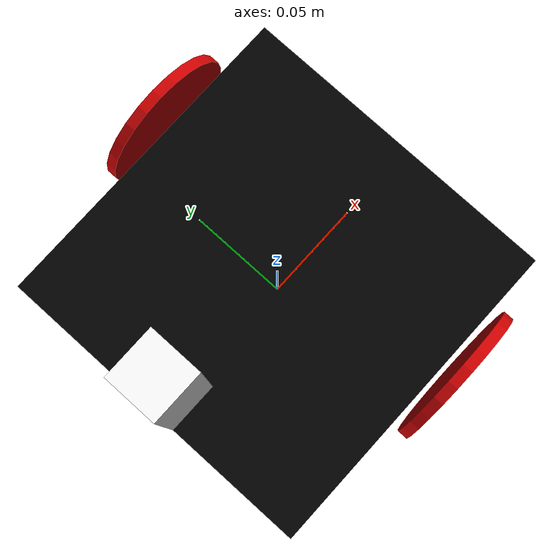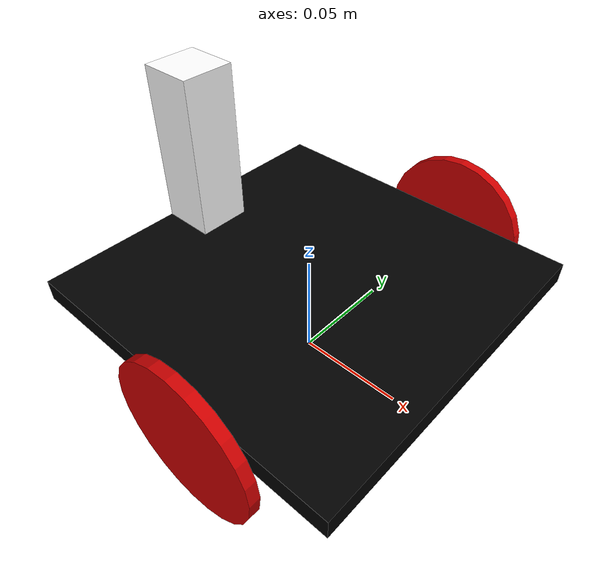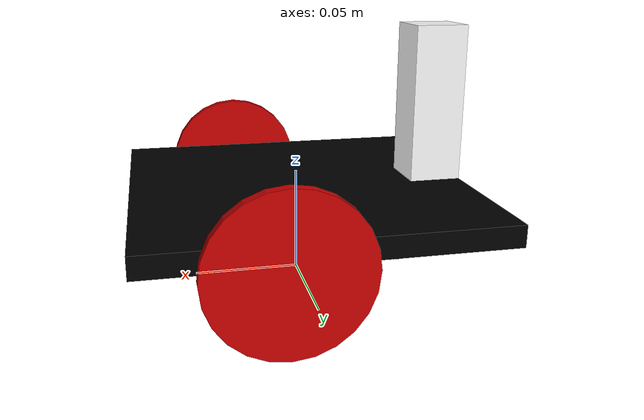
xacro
<?xml version="1.0"?>
<robot xmlns:xacro="http://www.ros.org/wiki/xacro" name="robot_tutorial">

  <xacro:property name="base_width" value="0.16"/>
  <xacro:property name="base_len" value="0.16"/>
  <xacro:property name="wheel_radius" value="0.035"/>
  <xacro:property name="base_wheel_gap" value="0.007"/>
  <xacro:property name="wheel_separation" value="0.15"/>
  <xacro:property name="wheel_joint_offset" value="0.02"/>

  <xacro:property name="caster_wheel_radius" value="${wheel_radius/2}"/>
  <xacro:property name="caster_wheel_mass" value="0.001"/>
  <xacro:property name="caster_wheel_joint_offset" value="-0.052"/>

  <xacro:property name="lidar360_link_height" value="0.075" />
  <xacro:property name="lidar360_link_size" value="0.025" />
  <xacro:property name="lidar360_dist" value="0.025" /> <!-- Distance above mount for lidar frame-->

  <!--Color Properties-->
  <material name="blue">
    <color rgba="0 0 0.8 1"/>
  </material>
  <material name="black">
    <color rgba="0 0 0 1"/>
  </material>
  <material name="white">
    <color rgba="1 1 1 1"/>
  </material>
  <material name="red">
    <color rgba="0.8 0.0 0.0 1.0"/>
  </material>

  <!--Interial macros-->
  <xacro:macro name="cylinder_inertia" params="m r h">
    <inertial>
      <mass value="${m}"/>
      <inertia ixx="${m*(3*r*r+h*h)/12}" ixy = "0" ixz = "0" iyy="${m*(3*r*r+h*h)/12}" iyz = "0" izz="${m*r*r/2}"/>
    </inertial>
  </xacro:macro>

  <xacro:macro name="box_inertia" params="m w h d">
    <inertial>
      <mass value="${m}"/>
      <inertia ixx="${m / 12.0 * (d*d + h*h)}" ixy="0.0" ixz="0.0" iyy="${m / 12.0 * (w*w + h*h)}" iyz="0.0" izz="${m / 12.0 * (w*w + d*d)}"/>
    </inertial>
  </xacro:macro>

  <xacro:macro name="sphere_inertia" params="m r">
    <inertial>
      <mass value="${m}"/>
      <inertia ixx="${2.0*m*(r*r)/5.0}" ixy="0.0" ixz="0.0" iyy="${2.0*m*(r*r)/5.0}" iyz="0.0" izz="${2.0*m*(r*r)/5.0}"/>
    </inertial>
  </xacro:macro>

  <!--Base Footprint-->
  <link name="base_footprint">
    <xacro:box_inertia m="10" w="0.001" h="0.001" d="0.001"/>
    <visual>
        <origin xyz="0 0 0" rpy="0 0 0" />
        <geometry>
            <box size="0.001 0.001 0.001" />
        </geometry>
    </visual>
  </link>

  <!--Base link-->
  <link name="base_link">
    <xacro:box_inertia m="10" w="${base_len}" h="${base_width}" d="0.01"/>
    <visual>
      <geometry>
        <box size="${base_len} ${base_width} 0.01"/>
      </geometry>
      <material name="black"/>
    </visual>
    <collision>
      <geometry>
        <box size="${base_len} ${base_width} 0.01"/>
      </geometry>
    </collision>
  </link>

  <!--base_link to base_footprint Joint-->
  <joint name="base_link_joint" type="fixed">
    <origin xyz="0 0 ${wheel_radius + 0.005}" rpy="0 0 0" />
    <parent link="base_footprint"/>
    <child link="base_link" />
  </joint>

  <!--Wheel link & joint macro-->
  <xacro:macro name="wheel" params="prefix reflect">
    <link name="${prefix}_wheel">
      <visual>
        <origin xyz="0 0 0" rpy="${pi/2} 0 0"/>
        <geometry>
          <cylinder radius="${wheel_radius}" length="0.005"/>
        </geometry>
        <material name="red"/>
      </visual>
      <collision>
        <origin xyz="0 0 0" rpy="${pi/2} 0 0"/>
        <geometry>
          <cylinder radius="${wheel_radius}" length="0.005"/>
        </geometry>
      </collision>
      <xacro:cylinder_inertia m="10" r="${wheel_radius}" h="0.005"/>
    </link>

    <joint name="${prefix}_wheel_joint" type="continuous">
      <axis xyz="0 1 0" rpy="0 0 0" />
      <parent link="base_link"/>
      <child link="${prefix}_wheel"/>
      <origin xyz="${wheel_joint_offset} ${((base_width/2)+base_wheel_gap)*reflect} -0.005" rpy="0 0 0"/>
    </joint>
  </xacro:macro>

  <!--Create Left & Right Wheel links/joints-->
  <xacro:wheel prefix="left" reflect="1"/>
  <xacro:wheel prefix="right" reflect="-1"/>

  <!--Caster Wheel Link-->
  <link name="caster_wheel">
    <visual>
      <origin xyz="0 0 0" rpy="0 0 0"/>
      <geometry>
        <sphere radius="${caster_wheel_radius}"/>
      </geometry>
      <material name="blue"/>
    </visual>
    <collision>
      <origin xyz="0 0 0" rpy="0 0 0"/>
      <geometry>
        <sphere radius="${caster_wheel_radius}"/>
      </geometry>
    </collision>
    <xacro:sphere_inertia m="10" r="${caster_wheel_radius}"/>
  </link>

  <!--Caster Wheel Joint-->
  <joint name="caster_wheel_joint" type="continuous">
    <axis xyz="0 1 0" rpy="0 0 0" />
    <parent link="base_link"/>
    <child link="caster_wheel"/>
    <origin xyz="${caster_wheel_joint_offset} 0 -${caster_wheel_radius+0.005}" rpy="0 0 0"/>
  </joint>

  <!-- Lidar360 Links-->
  <link name="lidar360_link">
    <visual>
      <origin xyz="0 0 0" rpy="0 0 0"/>
      <geometry>
        <box size="${lidar360_link_size} ${lidar360_link_size} ${lidar360_link_height}"/>
      </geometry>
      <material name="white"/>
    </visual>
    <collision>
      <origin xyz="0 0 0" rpy="0 0 0"/>
      <geometry>
        <box size="${lidar360_link_size} ${lidar360_link_size} ${lidar360_link_height}"/>
      </geometry>
    </collision>
    <xacro:box_inertia m="2" w="${lidar360_link_size}" h="${lidar360_link_height}" d="${lidar360_link_size}"/>
  </link>
  <link name="laser" />

  <!-- Lidar360 Joints-->
  <joint name="lidar360_joint" type="fixed">
    <axis xyz="0 1 0" />
    <origin xyz="${-0.5*base_len + 0.5*lidar360_link_size} 0 ${0.5*lidar360_link_height + 0.005}" rpy="0 0 0"/>
    <parent link="base_link"/>
    <child link="lidar360_link"/>
  </joint>
  <joint name="lidar360_top_joint" type="fixed">
    <axis xyz="0 1 0" />
    <origin xyz="0 0 ${0.5*lidar360_link_height + 0.5*lidar360_dist}" rpy="0 0 0"/>
    <parent link="lidar360_link"/>
    <child link="laser"/>
  </joint>

  <xacro:include filename="$(find ros_tutorial)/urdf/robot_tutorial_gazebo.xacro"/>

</robot>
